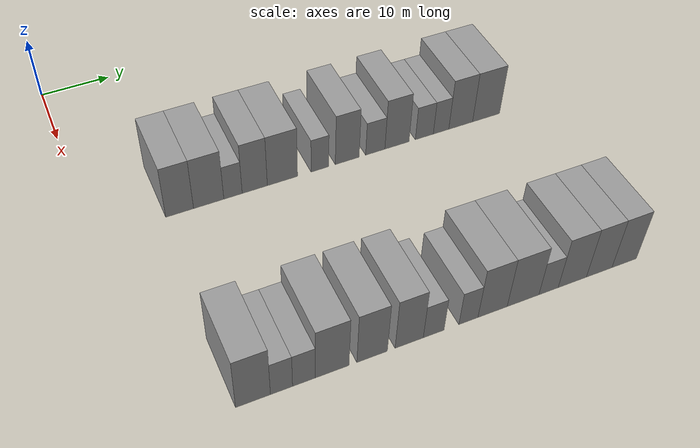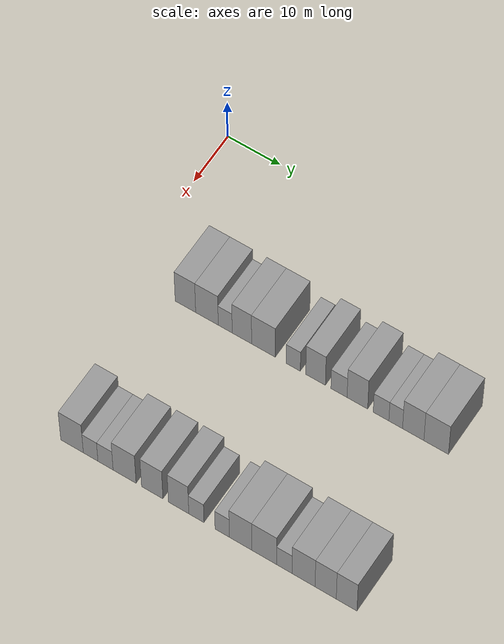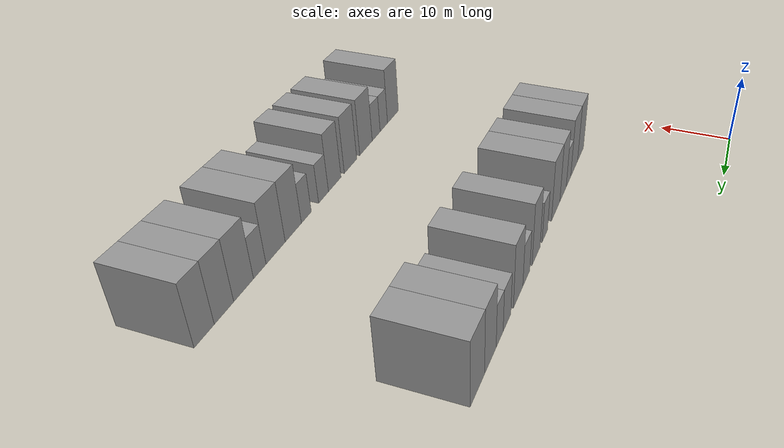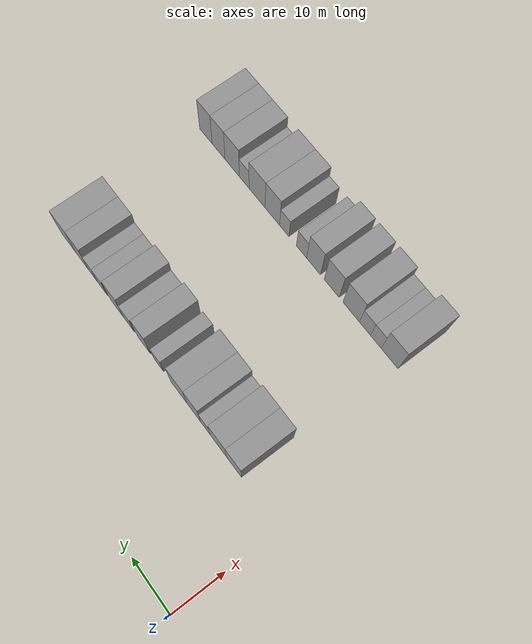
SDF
<sdf version="1.6">
 <world name="default">
  <model name="building_52">
   <static>1</static>
   <pose>25.0000 11.5132 0 0.000000 0.000000 0.000000</pose>
   <link name="link">
    <pose>0 0 4.50 0 0 0</pose>
    <collision name="collision"><geometry><box><size>10.0000 3.8282 9.0000</size></box></geometry></collision>
    <visual name="visual">
     <cast_shadows>0</cast_shadows>
     <geometry><box><size>10.0000 3.8282 9.0000</size></box></geometry>
     <material>
      <script>
       <uri>model://grey_wall/materials/scripts</uri>
       <uri>model://grey_wall/materials/textures</uri>
       <name>vrc/grey_wall</name>
      </script>
     </material>
    </visual>
   </link>
  </model>
  <model name="building_53">
   <static>1</static>
   <pose>25.0000 15.5393 0 0.000000 0.000000 0.000000</pose>
   <link name="link">
    <pose>0 0 4.50 0 0 0</pose>
    <collision name="collision"><geometry><box><size>10.0000 4.2240 9.0000</size></box></geometry></collision>
    <visual name="visual">
     <cast_shadows>0</cast_shadows>
     <geometry><box><size>10.0000 4.2240 9.0000</size></box></geometry>
     <material>
      <script>
       <uri>model://grey_wall/materials/scripts</uri>
       <uri>model://grey_wall/materials/textures</uri>
       <name>vrc/grey_wall</name>
      </script>
     </material>
    </visual>
   </link>
  </model>
  <model name="building_54">
   <static>1</static>
   <pose>25.0000 18.9498 0 0.000000 0.000000 0.000000</pose>
   <link name="link">
    <pose>0 0 3.00 0 0 0</pose>
    <collision name="collision"><geometry><box><size>10.0000 2.5970 6.0000</size></box></geometry></collision>
    <visual name="visual">
     <cast_shadows>0</cast_shadows>
     <geometry><box><size>10.0000 2.5970 6.0000</size></box></geometry>
     <material>
      <script>
       <uri>model://grey_wall/materials/scripts</uri>
       <uri>model://grey_wall/materials/textures</uri>
       <name>vrc/grey_wall</name>
      </script>
     </material>
    </visual>
   </link>
  </model>
  <model name="building_55">
   <static>1</static>
   <pose>25.0000 22.0485 0 0.000000 0.000000 0.000000</pose>
   <link name="link">
    <pose>0 0 4.50 0 0 0</pose>
    <collision name="collision"><geometry><box><size>10.0000 3.6004 9.0000</size></box></geometry></collision>
    <visual name="visual">
     <cast_shadows>0</cast_shadows>
     <geometry><box><size>10.0000 3.6004 9.0000</size></box></geometry>
     <material>
      <script>
       <uri>model://grey_wall/materials/scripts</uri>
       <uri>model://grey_wall/materials/textures</uri>
       <name>vrc/grey_wall</name>
      </script>
     </material>
    </visual>
   </link>
  </model>
  <model name="building_56">
   <static>1</static>
   <pose>25.0000 26.0477 0 0.000000 0.000000 0.000000</pose>
   <link name="link">
    <pose>0 0 4.50 0 0 0</pose>
    <collision name="collision"><geometry><box><size>10.0000 4.3980 9.0000</size></box></geometry></collision>
    <visual name="visual">
     <cast_shadows>0</cast_shadows>
     <geometry><box><size>10.0000 4.3980 9.0000</size></box></geometry>
     <material>
      <script>
       <uri>model://grey_wall/materials/scripts</uri>
       <uri>model://grey_wall/materials/textures</uri>
       <name>vrc/grey_wall</name>
      </script>
     </material>
    </visual>
   </link>
  </model>
  <model name="building_57">
   <static>1</static>
   <pose>25.0000 31.5481 0 0.000000 0.000000 0.000000</pose>
   <link name="link">
    <pose>0 0 3.00 0 0 0</pose>
    <collision name="collision"><geometry><box><size>10.0000 2.6028 6.0000</size></box></geometry></collision>
    <visual name="visual">
     <cast_shadows>0</cast_shadows>
     <geometry><box><size>10.0000 2.6028 6.0000</size></box></geometry>
     <material>
      <script>
       <uri>model://grey_wall/materials/scripts</uri>
       <uri>model://grey_wall/materials/textures</uri>
       <name>vrc/grey_wall</name>
      </script>
     </material>
    </visual>
   </link>
  </model>
  <model name="building_58">
   <static>1</static>
   <pose>25.0000 35.6523 0 0.000000 0.000000 0.000000</pose>
   <link name="link">
    <pose>0 0 4.50 0 0 0</pose>
    <collision name="collision"><geometry><box><size>10.0000 3.6056 9.0000</size></box></geometry></collision>
    <visual name="visual">
     <cast_shadows>0</cast_shadows>
     <geometry><box><size>10.0000 3.6056 9.0000</size></box></geometry>
     <material>
      <script>
       <uri>model://grey_wall/materials/scripts</uri>
       <uri>model://grey_wall/materials/textures</uri>
       <name>vrc/grey_wall</name>
      </script>
     </material>
    </visual>
   </link>
  </model>
  <model name="building_59">
   <static>1</static>
   <pose>25.0000 39.9330 0 0.000000 0.000000 0.000000</pose>
   <link name="link">
    <pose>0 0 3.00 0 0 0</pose>
    <collision name="collision"><geometry><box><size>10.0000 2.9558 6.0000</size></box></geometry></collision>
    <visual name="visual">
     <cast_shadows>0</cast_shadows>
     <geometry><box><size>10.0000 2.9558 6.0000</size></box></geometry>
     <material>
      <script>
       <uri>model://grey_wall/materials/scripts</uri>
       <uri>model://grey_wall/materials/textures</uri>
       <name>vrc/grey_wall</name>
      </script>
     </material>
    </visual>
   </link>
  </model>
  <model name="building_60">
   <static>1</static>
   <pose>25.0000 43.2895 0 0.000000 0.000000 0.000000</pose>
   <link name="link">
    <pose>0 0 4.50 0 0 0</pose>
    <collision name="collision"><geometry><box><size>10.0000 3.7572 9.0000</size></box></geometry></collision>
    <visual name="visual">
     <cast_shadows>0</cast_shadows>
     <geometry><box><size>10.0000 3.7572 9.0000</size></box></geometry>
     <material>
      <script>
       <uri>model://grey_wall/materials/scripts</uri>
       <uri>model://grey_wall/materials/textures</uri>
       <name>vrc/grey_wall</name>
      </script>
     </material>
    </visual>
   </link>
  </model>
  <model name="building_61">
   <static>1</static>
   <pose>25.0000 47.5904 0 0.000000 0.000000 0.000000</pose>
   <link name="link">
    <pose>0 0 3.00 0 0 0</pose>
    <collision name="collision"><geometry><box><size>10.0000 2.8447 6.0000</size></box></geometry></collision>
    <visual name="visual">
     <cast_shadows>0</cast_shadows>
     <geometry><box><size>10.0000 2.8447 6.0000</size></box></geometry>
     <material>
      <script>
       <uri>model://grey_wall/materials/scripts</uri>
       <uri>model://grey_wall/materials/textures</uri>
       <name>vrc/grey_wall</name>
      </script>
     </material>
    </visual>
   </link>
  </model>
  <model name="building_62">
   <static>1</static>
   <pose>25.0000 50.2499 0 0.000000 0.000000 0.000000</pose>
   <link name="link">
    <pose>0 0 3.00 0 0 0</pose>
    <collision name="collision"><geometry><box><size>10.0000 2.4743 6.0000</size></box></geometry></collision>
    <visual name="visual">
     <cast_shadows>0</cast_shadows>
     <geometry><box><size>10.0000 2.4743 6.0000</size></box></geometry>
     <material>
      <script>
       <uri>model://grey_wall/materials/scripts</uri>
       <uri>model://grey_wall/materials/textures</uri>
       <name>vrc/grey_wall</name>
      </script>
     </material>
    </visual>
   </link>
  </model>
  <model name="building_63">
   <static>1</static>
   <pose>25.0000 53.4135 0 0.000000 0.000000 0.000000</pose>
   <link name="link">
    <pose>0 0 4.50 0 0 0</pose>
    <collision name="collision"><geometry><box><size>10.0000 3.8528 9.0000</size></box></geometry></collision>
    <visual name="visual">
     <cast_shadows>0</cast_shadows>
     <geometry><box><size>10.0000 3.8528 9.0000</size></box></geometry>
     <material>
      <script>
       <uri>model://grey_wall/materials/scripts</uri>
       <uri>model://grey_wall/materials/textures</uri>
       <name>vrc/grey_wall</name>
      </script>
     </material>
    </visual>
   </link>
  </model>
  <model name="building_64">
   <static>1</static>
   <pose>25.0000 57.5541 0 0.000000 0.000000 0.000000</pose>
   <link name="link">
    <pose>0 0 4.50 0 0 0</pose>
    <collision name="collision"><geometry><box><size>10.0000 4.4286 9.0000</size></box></geometry></collision>
    <visual name="visual">
     <cast_shadows>0</cast_shadows>
     <geometry><box><size>10.0000 4.4286 9.0000</size></box></geometry>
     <material>
      <script>
       <uri>model://grey_wall/materials/scripts</uri>
       <uri>model://grey_wall/materials/textures</uri>
       <name>vrc/grey_wall</name>
      </script>
     </material>
    </visual>
   </link>
  </model>
  <model name="building_167">
   <static>1</static>
   <pose>55.0000 10.4272 0 0.000000 0.000000 0.000000</pose>
   <link name="link">
    <pose>0 0 4.50 0 0 0</pose>
    <collision name="collision"><geometry><box><size>10.0000 4.1783 9.0000</size></box></geometry></collision>
    <visual name="visual">
     <cast_shadows>0</cast_shadows>
     <geometry><box><size>10.0000 4.1783 9.0000</size></box></geometry>
     <material>
      <script>
       <uri>model://grey_wall/materials/scripts</uri>
       <uri>model://grey_wall/materials/textures</uri>
       <name>vrc/grey_wall</name>
      </script>
     </material>
    </visual>
   </link>
  </model>
  <model name="building_168">
   <static>1</static>
   <pose>55.0000 13.8626 0 0.000000 0.000000 0.000000</pose>
   <link name="link">
    <pose>0 0 3.00 0 0 0</pose>
    <collision name="collision"><geometry><box><size>10.0000 2.6924 6.0000</size></box></geometry></collision>
    <visual name="visual">
     <cast_shadows>0</cast_shadows>
     <geometry><box><size>10.0000 2.6924 6.0000</size></box></geometry>
     <material>
      <script>
       <uri>model://grey_wall/materials/scripts</uri>
       <uri>model://grey_wall/materials/textures</uri>
       <name>vrc/grey_wall</name>
      </script>
     </material>
    </visual>
   </link>
  </model>
  <model name="building_169">
   <static>1</static>
   <pose>55.0000 16.6100 0 0.000000 0.000000 0.000000</pose>
   <link name="link">
    <pose>0 0 3.00 0 0 0</pose>
    <collision name="collision"><geometry><box><size>10.0000 2.8025 6.0000</size></box></geometry></collision>
    <visual name="visual">
     <cast_shadows>0</cast_shadows>
     <geometry><box><size>10.0000 2.8025 6.0000</size></box></geometry>
     <material>
      <script>
       <uri>model://grey_wall/materials/scripts</uri>
       <uri>model://grey_wall/materials/textures</uri>
       <name>vrc/grey_wall</name>
      </script>
     </material>
    </visual>
   </link>
  </model>
  <model name="building_170">
   <static>1</static>
   <pose>55.0000 20.1219 0 0.000000 0.000000 0.000000</pose>
   <link name="link">
    <pose>0 0 4.50 0 0 0</pose>
    <collision name="collision"><geometry><box><size>10.0000 4.2214 9.0000</size></box></geometry></collision>
    <visual name="visual">
     <cast_shadows>0</cast_shadows>
     <geometry><box><size>10.0000 4.2214 9.0000</size></box></geometry>
     <material>
      <script>
       <uri>model://grey_wall/materials/scripts</uri>
       <uri>model://grey_wall/materials/textures</uri>
       <name>vrc/grey_wall</name>
      </script>
     </material>
    </visual>
   </link>
  </model>
  <model name="building_171">
   <static>1</static>
   <pose>55.0000 25.1913 0 0.000000 0.000000 0.000000</pose>
   <link name="link">
    <pose>0 0 4.50 0 0 0</pose>
    <collision name="collision"><geometry><box><size>10.0000 3.9174 9.0000</size></box></geometry></collision>
    <visual name="visual">
     <cast_shadows>0</cast_shadows>
     <geometry><box><size>10.0000 3.9174 9.0000</size></box></geometry>
     <material>
      <script>
       <uri>model://grey_wall/materials/scripts</uri>
       <uri>model://grey_wall/materials/textures</uri>
       <name>vrc/grey_wall</name>
      </script>
     </material>
    </visual>
   </link>
  </model>
  <model name="building_172">
   <static>1</static>
   <pose>55.0000 30.0034 0 0.000000 0.000000 0.000000</pose>
   <link name="link">
    <pose>0 0 4.50 0 0 0</pose>
    <collision name="collision"><geometry><box><size>10.0000 3.7068 9.0000</size></box></geometry></collision>
    <visual name="visual">
     <cast_shadows>0</cast_shadows>
     <geometry><box><size>10.0000 3.7068 9.0000</size></box></geometry>
     <material>
      <script>
       <uri>model://grey_wall/materials/scripts</uri>
       <uri>model://grey_wall/materials/textures</uri>
       <name>vrc/grey_wall</name>
      </script>
     </material>
    </visual>
   </link>
  </model>
  <model name="building_173">
   <static>1</static>
   <pose>55.0000 33.2369 0 0.000000 0.000000 0.000000</pose>
   <link name="link">
    <pose>0 0 3.00 0 0 0</pose>
    <collision name="collision"><geometry><box><size>10.0000 2.7602 6.0000</size></box></geometry></collision>
    <visual name="visual">
     <cast_shadows>0</cast_shadows>
     <geometry><box><size>10.0000 2.7602 6.0000</size></box></geometry>
     <material>
      <script>
       <uri>model://grey_wall/materials/scripts</uri>
       <uri>model://grey_wall/materials/textures</uri>
       <name>vrc/grey_wall</name>
      </script>
     </material>
    </visual>
   </link>
  </model>
  <model name="building_174">
   <static>1</static>
   <pose>55.0000 37.9140 0 0.000000 0.000000 0.000000</pose>
   <link name="link">
    <pose>0 0 3.00 0 0 0</pose>
    <collision name="collision"><geometry><box><size>10.0000 2.5939 6.0000</size></box></geometry></collision>
    <visual name="visual">
     <cast_shadows>0</cast_shadows>
     <geometry><box><size>10.0000 2.5939 6.0000</size></box></geometry>
     <material>
      <script>
       <uri>model://grey_wall/materials/scripts</uri>
       <uri>model://grey_wall/materials/textures</uri>
       <name>vrc/grey_wall</name>
      </script>
     </material>
    </visual>
   </link>
  </model>
  <model name="building_175">
   <static>1</static>
   <pose>55.0000 41.2305 0 0.000000 0.000000 0.000000</pose>
   <link name="link">
    <pose>0 0 4.50 0 0 0</pose>
    <collision name="collision"><geometry><box><size>10.0000 4.0392 9.0000</size></box></geometry></collision>
    <visual name="visual">
     <cast_shadows>0</cast_shadows>
     <geometry><box><size>10.0000 4.0392 9.0000</size></box></geometry>
     <material>
      <script>
       <uri>model://grey_wall/materials/scripts</uri>
       <uri>model://grey_wall/materials/textures</uri>
       <name>vrc/grey_wall</name>
      </script>
     </material>
    </visual>
   </link>
  </model>
  <model name="building_176">
   <static>1</static>
   <pose>55.0000 45.4848 0 0.000000 0.000000 0.000000</pose>
   <link name="link">
    <pose>0 0 4.50 0 0 0</pose>
    <collision name="collision"><geometry><box><size>10.0000 4.4694 9.0000</size></box></geometry></collision>
    <visual name="visual">
     <cast_shadows>0</cast_shadows>
     <geometry><box><size>10.0000 4.4694 9.0000</size></box></geometry>
     <material>
      <script>
       <uri>model://grey_wall/materials/scripts</uri>
       <uri>model://grey_wall/materials/textures</uri>
       <name>vrc/grey_wall</name>
      </script>
     </material>
    </visual>
   </link>
  </model>
  <model name="building_177">
   <static>1</static>
   <pose>55.0000 49.0983 0 0.000000 0.000000 0.000000</pose>
   <link name="link">
    <pose>0 0 3.00 0 0 0</pose>
    <collision name="collision"><geometry><box><size>10.0000 2.7575 6.0000</size></box></geometry></collision>
    <visual name="visual">
     <cast_shadows>0</cast_shadows>
     <geometry><box><size>10.0000 2.7575 6.0000</size></box></geometry>
     <material>
      <script>
       <uri>model://grey_wall/materials/scripts</uri>
       <uri>model://grey_wall/materials/textures</uri>
       <name>vrc/grey_wall</name>
      </script>
     </material>
    </visual>
   </link>
  </model>
  <model name="building_178">
   <static>1</static>
   <pose>55.0000 52.5286 0 0.000000 0.000000 0.000000</pose>
   <link name="link">
    <pose>0 0 4.50 0 0 0</pose>
    <collision name="collision"><geometry><box><size>10.0000 4.1032 9.0000</size></box></geometry></collision>
    <visual name="visual">
     <cast_shadows>0</cast_shadows>
     <geometry><box><size>10.0000 4.1032 9.0000</size></box></geometry>
     <material>
      <script>
       <uri>model://grey_wall/materials/scripts</uri>
       <uri>model://grey_wall/materials/textures</uri>
       <name>vrc/grey_wall</name>
      </script>
     </material>
    </visual>
   </link>
  </model>
  <model name="building_179">
   <static>1</static>
   <pose>55.0000 56.4631 0 0.000000 0.000000 0.000000</pose>
   <link name="link">
    <pose>0 0 4.50 0 0 0</pose>
    <collision name="collision"><geometry><box><size>10.0000 3.7657 9.0000</size></box></geometry></collision>
    <visual name="visual">
     <cast_shadows>0</cast_shadows>
     <geometry><box><size>10.0000 3.7657 9.0000</size></box></geometry>
     <material>
      <script>
       <uri>model://grey_wall/materials/scripts</uri>
       <uri>model://grey_wall/materials/textures</uri>
       <name>vrc/grey_wall</name>
      </script>
     </material>
    </visual>
   </link>
  </model>
  <model name="building_180">
   <static>1</static>
   <pose>55.0000 60.1836 0 0.000000 0.000000 0.000000</pose>
   <link name="link">
    <pose>0 0 4.50 0 0 0</pose>
    <collision name="collision"><geometry><box><size>10.0000 3.6752 9.0000</size></box></geometry></collision>
    <visual name="visual">
     <cast_shadows>0</cast_shadows>
     <geometry><box><size>10.0000 3.6752 9.0000</size></box></geometry>
     <material>
      <script>
       <uri>model://grey_wall/materials/scripts</uri>
       <uri>model://grey_wall/materials/textures</uri>
       <name>vrc/grey_wall</name>
      </script>
     </material>
    </visual>
   </link>
  </model>
 </world>
</sdf>
